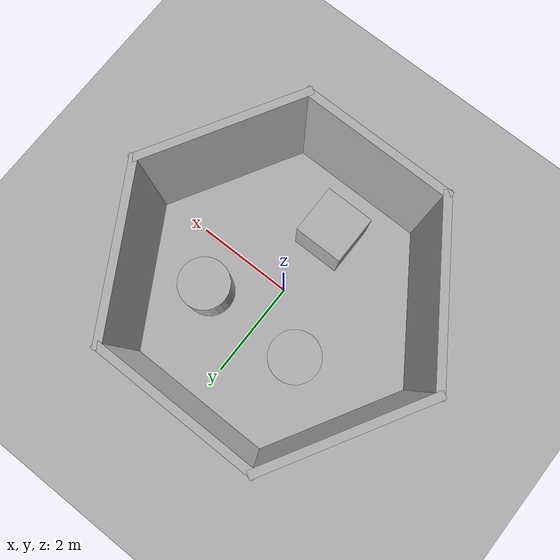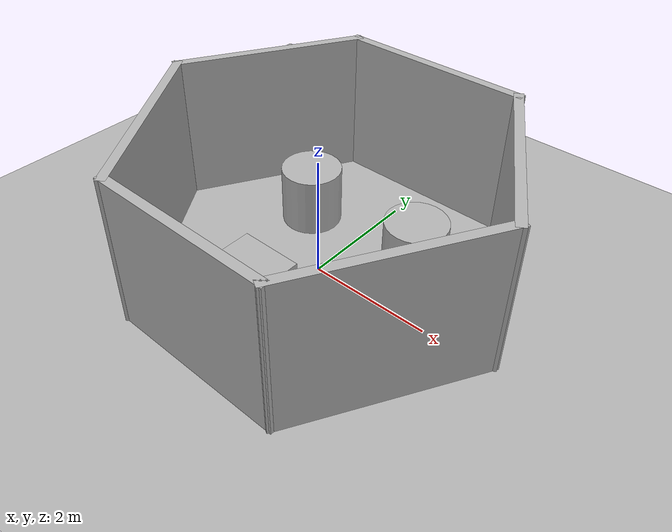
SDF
<sdf version="1.7">
 <world name="default">
  <light name="sun" type="directional">
   <pose>0 0 10 0 -0 0</pose>
   <diffuse>0.8 0.8 0.8 1</diffuse>
   <specular>0.2 0.2 0.2 1</specular>
   <attenuation>
    <range>1000</range>
    <constant>0.9</constant>
    <linear>0.01</linear>
    <quadratic>0.001</quadratic>
   </attenuation>
   <direction>-0.5 0.1 -0.9</direction>
   <spot><inner_angle>0</inner_angle><outer_angle>0</outer_angle><falloff>0</falloff></spot>
  </light>
  <model name="ground_plane">
   <static>1</static>
   <link name="link">
    <collision name="collision">
     <geometry><plane><normal>0 0 1</normal><size>100 100</size></plane></geometry>
     <surface>
      <contact><collide_bitmask>65535</collide_bitmask></contact>
      <friction><ode><mu>100</mu><mu2>50</mu2></ode></friction>
     </surface>
    </collision>
    <visual name="visual">
     <cast_shadows>0</cast_shadows>
     <geometry><plane><normal>0 0 1</normal><size>100 100</size></plane></geometry>
     <material>
      <ambient>0.7 0.7 0.7 1</ambient>
      <diffuse>0.7 0.7 0.7 1</diffuse>
      <specular>0.2 0.2 0.2 1</specular>
      <emissive>0 0 0 1</emissive>
      <pbr><metal><albedo>0.7 0.7 0.7 1</albedo><roughness>0.4</roughness><metalness>0</metalness></metal></pbr>
     </material>
    </visual>
   </link>
  </model>
  <gravity>0 0 -9.8</gravity>
  <magnetic_field>6e-06 2.3e-05 -4.2e-05</magnetic_field>
  <atmosphere type="adiabatic"/>
  <physics type="ode">
   <max_step_size>0.001</max_step_size>
   <real_time_factor>1</real_time_factor>
   <real_time_update_rate>1000</real_time_update_rate>
  </physics>
  <plugin filename="ignition-gazebo-physics-system" name="gz::sim::systems::Physics"/>
  <plugin filename="ignition-gazebo-sensors-system" name="gz::sim::systems::Sensors">
   <render_engine>ogre2</render_engine>
  </plugin>
  <plugin filename="ignition-gazebo-imu-system" name="gz::sim::systems::Imu"/>
  <plugin filename="ignition-gazebo-user-commands-system" name="gz::sim::systems::UserCommands"/>
  <plugin filename="ignition-gazebo-scene-broadcaster-system" name="gz::sim::systems::SceneBroadcaster"/>
  <scene><ambient>0.4 0.4 0.4 1</ambient><background>0.7 0.7 0.7 1</background><shadows>1</shadows></scene>
  <spherical_coordinates>
   <surface_model>EARTH_WGS84</surface_model>
   <latitude_deg>0</latitude_deg>
   <longitude_deg>0</longitude_deg>
   <elevation>0</elevation>
   <heading_deg>0</heading_deg>
  </spherical_coordinates>
  <model name="world1">
   <pose>-0.031727 0.091285 0 0 -0 0</pose>
   <link name="Wall_47">
    <collision name="Wall_47_Collision">
     <geometry><box><size>3.25 0.15 2.5</size></box></geometry>
     <pose>0 0 1.25 0 -0 0</pose>
    </collision>
    <visual name="Wall_47_Visual">
     <pose>0 0 1.25 0 -0 0</pose>
     <geometry><box><size>3.25 0.15 2.5</size></box></geometry>
     <material>
      <ambient>0.7 0.7 0.7 1</ambient>
      <diffuse>0.7 0.7 0.7 1</diffuse>
      <specular>0.2 0.2 0.2 1</specular>
      <emissive>0 0 0 1</emissive>
      <pbr><metal><albedo>0.7 0.7 0.7 1</albedo><roughness>0.4</roughness><metalness>0</metalness></metal></pbr>
     </material>
     <meta><layer>0</layer></meta>
    </visual>
    <pose>-2.3242 1.34314 0 0 -0 1.0472</pose>
   </link>
   <link name="Wall_48">
    <collision name="Wall_48_Collision">
     <geometry><box><size>3.25 0.15 2.5</size></box></geometry>
     <pose>0 0 1.25 0 -0 0</pose>
    </collision>
    <visual name="Wall_48_Visual">
     <pose>0 0 1.25 0 -0 0</pose>
     <geometry><box><size>3.25 0.15 2.5</size></box></geometry>
     <material>
      <ambient>0.7 0.7 0.7 1</ambient>
      <diffuse>0.7 0.7 0.7 1</diffuse>
      <specular>0.2 0.2 0.2 1</specular>
      <emissive>0 0 0 1</emissive>
      <pbr><metal><albedo>0.7 0.7 0.7 1</albedo><roughness>0.4</roughness><metalness>0</metalness></metal></pbr>
     </material>
     <meta><layer>0</layer></meta>
    </visual>
    <pose>0.000804 2.68548 0 0 -0 0</pose>
   </link>
   <link name="Wall_49">
    <collision name="Wall_49_Collision">
     <geometry><box><size>3.25 0.15 2.5</size></box></geometry>
     <pose>0 0 1.25 0 -0 0</pose>
    </collision>
    <visual name="Wall_49_Visual">
     <pose>0 0 1.25 0 -0 0</pose>
     <geometry><box><size>3.25 0.15 2.5</size></box></geometry>
     <material>
      <ambient>0.7 0.7 0.7 1</ambient>
      <diffuse>0.7 0.7 0.7 1</diffuse>
      <specular>0.2 0.2 0.2 1</specular>
      <emissive>0 0 0 1</emissive>
      <pbr><metal><albedo>0.7 0.7 0.7 1</albedo><roughness>0.4</roughness><metalness>0</metalness></metal></pbr>
     </material>
     <meta><layer>0</layer></meta>
    </visual>
    <pose>2.3258 1.34314 0 0 -0 -1.0472</pose>
   </link>
   <link name="Wall_50">
    <collision name="Wall_50_Collision">
     <geometry><box><size>3.25 0.15 2.5</size></box></geometry>
     <pose>0 0 1.25 0 -0 0</pose>
    </collision>
    <visual name="Wall_50_Visual">
     <pose>0 0 1.25 0 -0 0</pose>
     <geometry><box><size>3.25 0.15 2.5</size></box></geometry>
     <material>
      <ambient>0.7 0.7 0.7 1</ambient>
      <diffuse>0.7 0.7 0.7 1</diffuse>
      <specular>0.2 0.2 0.2 1</specular>
      <emissive>0 0 0 1</emissive>
      <pbr><metal><albedo>0.7 0.7 0.7 1</albedo><roughness>0.4</roughness><metalness>0</metalness></metal></pbr>
     </material>
     <meta><layer>0</layer></meta>
    </visual>
    <pose>2.3258 -1.34153 0 0 -0 -2.0944</pose>
   </link>
   <link name="Wall_51">
    <collision name="Wall_51_Collision">
     <geometry><box><size>3 0.15 2.5</size></box></geometry>
     <pose>0 0 1.25 0 -0 0</pose>
    </collision>
    <visual name="Wall_51_Visual">
     <pose>0 0 1.25 0 -0 0</pose>
     <geometry><box><size>3 0.15 2.5</size></box></geometry>
     <material>
      <ambient>0.7 0.7 0.7 1</ambient>
      <diffuse>0.7 0.7 0.7 1</diffuse>
      <specular>0.2 0.2 0.2 1</specular>
      <emissive>0 0 0 1</emissive>
      <pbr><metal><albedo>0.7 0.7 0.7 1</albedo><roughness>0.4</roughness><metalness>0</metalness></metal></pbr>
     </material>
     <meta><layer>0</layer></meta>
    </visual>
    <pose>0.125804 -2.68387 0 0 -0 3.14159</pose>
   </link>
   <link name="Wall_52">
    <collision name="Wall_52_Collision">
     <geometry><box><size>3.38226 0.15 2.5</size></box></geometry>
     <pose>0 0 1.25 0 -0 0</pose>
    </collision>
    <visual name="Wall_52_Visual">
     <pose>0 0 1.25 0 -0 0</pose>
     <geometry><box><size>3.38226 0.15 2.5</size></box></geometry>
     <material>
      <ambient>0.7 0.7 0.7 1</ambient>
      <diffuse>0.7 0.7 0.7 1</diffuse>
      <specular>0.2 0.2 0.2 1</specular>
      <emissive>0 0 0 1</emissive>
      <pbr><metal><albedo>0.7 0.7 0.7 1</albedo><roughness>0.4</roughness><metalness>0</metalness></metal></pbr>
     </material>
     <meta><layer>0</layer></meta>
    </visual>
    <pose>-2.1992 -1.34153 0 0 -0 2.16143</pose>
   </link>
   <static>1</static>
  </model>
  <model name="unit_cylinder">
   <pose>-0.995623 0.944445 0.499998 3e-06 4e-06 -0</pose>
   <link name="link">
    <inertial>
     <mass>1</mass>
     <inertia><ixx>0.145833</ixx><ixy>0</ixy><ixz>0</ixz><iyy>0.145833</iyy><iyz>0</iyz><izz>0.125</izz></inertia>
    </inertial>
    <collision name="collision">
     <geometry><cylinder><radius>0.5</radius><length>1</length></cylinder></geometry>
    </collision>
    <visual name="visual">
     <geometry><cylinder><radius>0.5</radius><length>1</length></cylinder></geometry>
     <material>
      <ambient>0.7 0.7 0.7 1</ambient>
      <diffuse>0.7 0.7 0.7 1</diffuse>
      <specular>0.2 0.2 0.2 1</specular>
      <emissive>0 0 0 1</emissive>
      <pbr><metal><albedo>0.7 0.7 0.7 1</albedo><roughness>0.4</roughness><metalness>0</metalness></metal></pbr>
     </material>
    </visual>
   </link>
  </model>
  <model name="unit_cylinder_0">
   <pose>1.14305 0.920895 0.499997 3e-06 3e-06 0</pose>
   <link name="link">
    <inertial>
     <mass>1</mass>
     <inertia><ixx>0.145833</ixx><ixy>0</ixy><ixz>0</ixz><iyy>0.145833</iyy><iyz>0</iyz><izz>0.125</izz></inertia>
    </inertial>
    <collision name="collision">
     <geometry><cylinder><radius>0.5</radius><length>1</length></cylinder></geometry>
    </collision>
    <visual name="visual">
     <geometry><cylinder><radius>0.5</radius><length>1</length></cylinder></geometry>
     <material>
      <ambient>0.7 0.7 0.7 1</ambient>
      <diffuse>0.7 0.7 0.7 1</diffuse>
      <specular>0.2 0.2 0.2 1</specular>
      <emissive>0 0 0 1</emissive>
      <pbr><metal><albedo>0.7 0.7 0.7 1</albedo><roughness>0.4</roughness><metalness>0</metalness></metal></pbr>
     </material>
    </visual>
   </link>
  </model>
  <model name="unit_box">
   <pose>-0.055687 -1.44185 0.5 0 -0 0</pose>
   <link name="link">
    <inertial>
     <mass>1</mass>
     <inertia>
      <ixx>0.166667</ixx>
      <ixy>0</ixy>
      <ixz>0</ixz>
      <iyy>0.166667</iyy>
      <iyz>0</iyz>
      <izz>0.166667</izz>
     </inertia>
    </inertial>
    <collision name="collision"><geometry><box><size>1 1 1</size></box></geometry></collision>
    <visual name="visual">
     <geometry><box><size>1 1 1</size></box></geometry>
     <material>
      <ambient>0.7 0.7 0.7 1</ambient>
      <diffuse>0.7 0.7 0.7 1</diffuse>
      <specular>0.2 0.2 0.2 1</specular>
      <emissive>0 0 0 1</emissive>
      <pbr><metal><albedo>0.7 0.7 0.7 1</albedo><roughness>0.4</roughness><metalness>0</metalness></metal></pbr>
     </material>
    </visual>
   </link>
  </model>
 </world>
</sdf>
